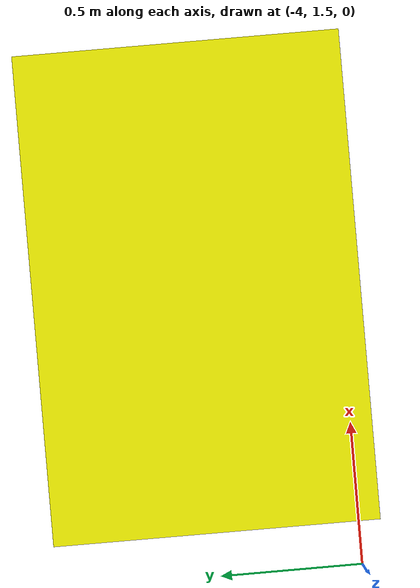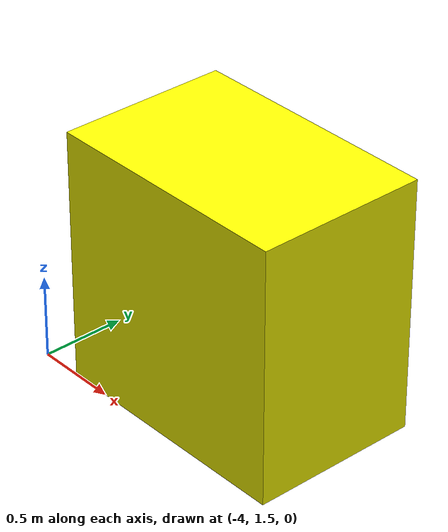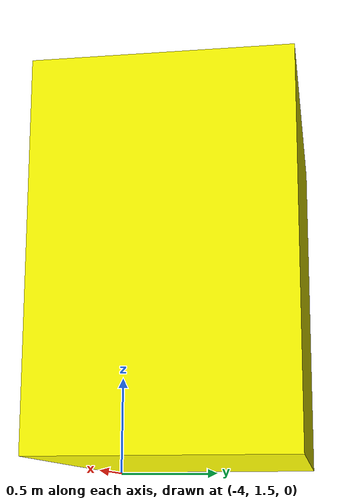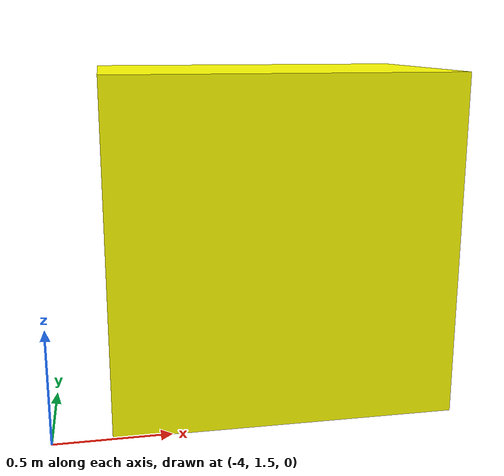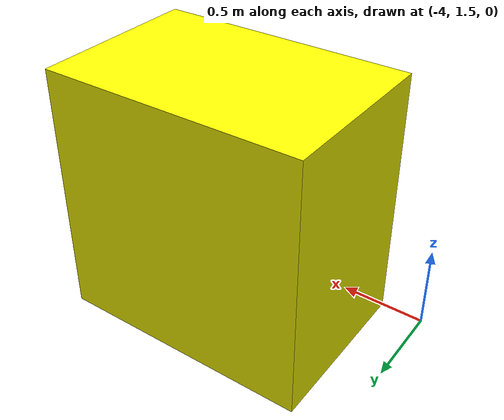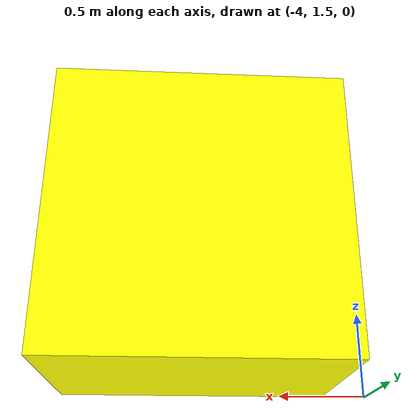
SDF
<?xml version="1.0" ?>
<sdf version="1.10">
    <model name="yellowBox1_5x1x1_5">
      <static>true</static>
      <pose>-3 2 0.75 0 0 0</pose>
      <link name="link">
        <temperature>200.0</temperature>
        <collision name="collision">
          <geometry><box><size>1.5 1 1.5</size></box></geometry>
        </collision>
        <visual name="visual">
          <geometry><box><size>1.5 1 1.5</size></box></geometry>
          <material>
            <ambient>1 1 0 1</ambient>
            <diffuse>1 1 0 1</diffuse>
          </material>
          <plugin
            filename="gz-sim-thermal-system"
            name="gz::sim::systems::Thermal">
            <temperature>325</temperature>
            <emissivity>0.9</emissivity>
          </plugin>
        </visual>
      </link>
    </model>
</sdf>
